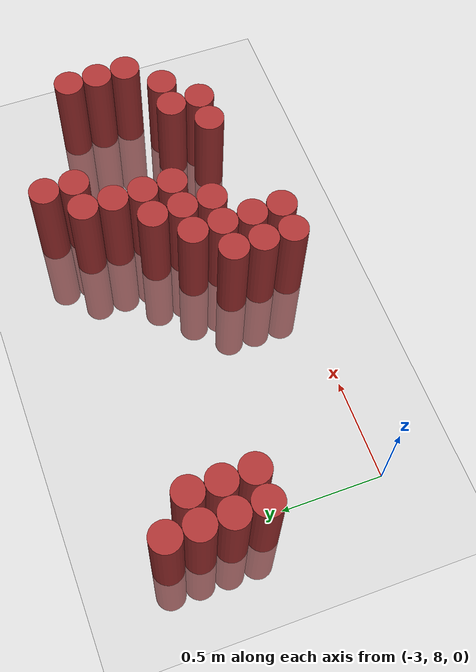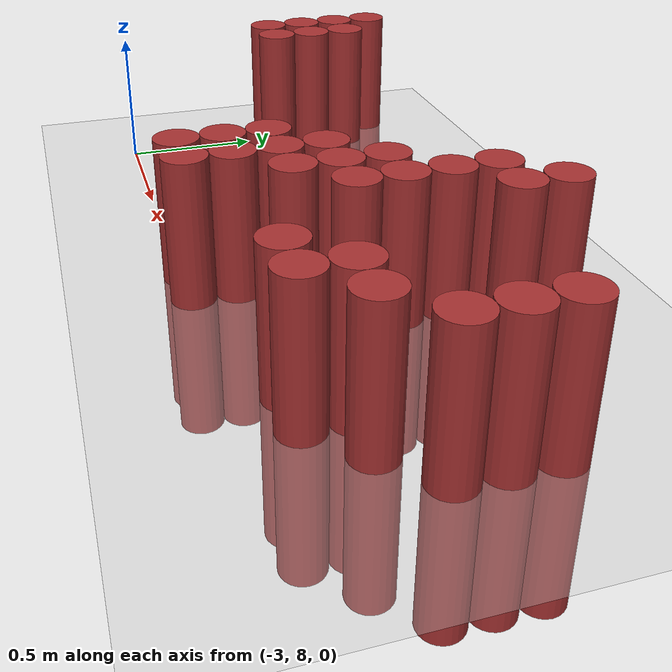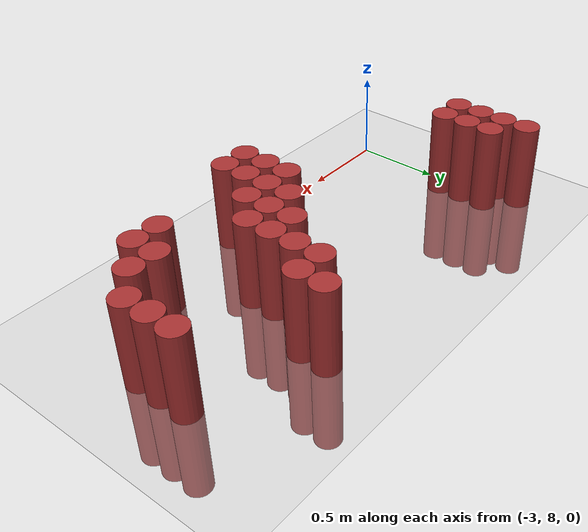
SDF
<sdf version="1.6">
 <world name="default">
  <model name="ground_plane">
   <static>1</static>
   <link name="link">
    <collision name="collision">
     <geometry><plane><normal>0 0 1</normal><size>100 100</size></plane></geometry>
     <surface><friction><ode><mu>100</mu><mu2>50</mu2></ode></friction></surface>
    </collision>
    <visual name="visual">
     <cast_shadows>0</cast_shadows>
     <geometry><plane><normal>0 0 1</normal><size>100 100</size></plane></geometry>
     <material>
      <script><uri>file://media/materials/scripts/gazebo.material</uri><name>Gazebo/Grey</name></script>
     </material>
    </visual>
   </link>
  </model>
  <model name="unit_cylinder_201">
   <static>1</static>
   <pose>-3.075000 8.625000 0.000000 0.000000 0.000000 0.000000</pose>
   <link name="link">
    <inertial>
     <mass>1</mass>
     <inertia><ixx>0.145833</ixx><ixy>0</ixy><ixz>0</ixz><iyy>0.145833</iyy><iyz>0</iyz><izz>0.125</izz></inertia>
    </inertial>
    <collision name="collision">
     <geometry><cylinder><radius>0.075000</radius><length>1</length></cylinder></geometry>
    </collision>
    <visual name="visual">
     <geometry><cylinder><radius>0.075000</radius><length>1</length></cylinder></geometry>
     <material>
      <ambient>0.648000 0.192000 0.192000 1</ambient>
      <diffuse>0.648000 0.192000 0.192000 1</diffuse>
     </material>
     <material>
      <script><name>Gazebo/Grey</name><uri>file://media/materials/scripts/gazebo.material</uri></script>
     </material>
    </visual>
    <sensor name="sensor_contact" type="contact"><contact><collision>collision</collision></contact></sensor>
   </link>
   <plugin filename="gz-sim-touchplugin-system" name="gz::sim::systems::TouchPlugin">
    <target>robot</target>
    <namespace>robot</namespace>
    <time>0.001</time>
    <enabled>true</enabled>
   </plugin>
  </model>
  <model name="unit_cylinder_202">
   <static>1</static>
   <pose>-3.075000 8.775000 0.000000 0.000000 0.000000 0.000000</pose>
   <link name="link">
    <inertial>
     <mass>1</mass>
     <inertia><ixx>0.145833</ixx><ixy>0</ixy><ixz>0</ixz><iyy>0.145833</iyy><iyz>0</iyz><izz>0.125</izz></inertia>
    </inertial>
    <collision name="collision">
     <geometry><cylinder><radius>0.075000</radius><length>1</length></cylinder></geometry>
    </collision>
    <visual name="visual">
     <geometry><cylinder><radius>0.075000</radius><length>1</length></cylinder></geometry>
     <material>
      <ambient>0.648000 0.192000 0.192000 1</ambient>
      <diffuse>0.648000 0.192000 0.192000 1</diffuse>
     </material>
     <material>
      <script><name>Gazebo/Grey</name><uri>file://media/materials/scripts/gazebo.material</uri></script>
     </material>
    </visual>
    <sensor name="sensor_contact" type="contact"><contact><collision>collision</collision></contact></sensor>
   </link>
   <plugin filename="gz-sim-touchplugin-system" name="gz::sim::systems::TouchPlugin">
    <target>robot</target>
    <namespace>robot</namespace>
    <time>0.001</time>
    <enabled>true</enabled>
   </plugin>
  </model>
  <model name="unit_cylinder_203">
   <static>1</static>
   <pose>-3.075000 8.925000 0.000000 0.000000 0.000000 0.000000</pose>
   <link name="link">
    <inertial>
     <mass>1</mass>
     <inertia><ixx>0.145833</ixx><ixy>0</ixy><ixz>0</ixz><iyy>0.145833</iyy><iyz>0</iyz><izz>0.125</izz></inertia>
    </inertial>
    <collision name="collision">
     <geometry><cylinder><radius>0.075000</radius><length>1</length></cylinder></geometry>
    </collision>
    <visual name="visual">
     <geometry><cylinder><radius>0.075000</radius><length>1</length></cylinder></geometry>
     <material>
      <ambient>0.648000 0.192000 0.192000 1</ambient>
      <diffuse>0.648000 0.192000 0.192000 1</diffuse>
     </material>
     <material>
      <script><name>Gazebo/Grey</name><uri>file://media/materials/scripts/gazebo.material</uri></script>
     </material>
    </visual>
    <sensor name="sensor_contact" type="contact"><contact><collision>collision</collision></contact></sensor>
   </link>
   <plugin filename="gz-sim-touchplugin-system" name="gz::sim::systems::TouchPlugin">
    <target>robot</target>
    <namespace>robot</namespace>
    <time>0.001</time>
    <enabled>true</enabled>
   </plugin>
  </model>
  <model name="unit_cylinder_204">
   <static>1</static>
   <pose>-3.075000 9.075000 0.000000 0.000000 0.000000 0.000000</pose>
   <link name="link">
    <inertial>
     <mass>1</mass>
     <inertia><ixx>0.145833</ixx><ixy>0</ixy><ixz>0</ixz><iyy>0.145833</iyy><iyz>0</iyz><izz>0.125</izz></inertia>
    </inertial>
    <collision name="collision">
     <geometry><cylinder><radius>0.075000</radius><length>1</length></cylinder></geometry>
    </collision>
    <visual name="visual">
     <geometry><cylinder><radius>0.075000</radius><length>1</length></cylinder></geometry>
     <material>
      <ambient>0.648000 0.192000 0.192000 1</ambient>
      <diffuse>0.648000 0.192000 0.192000 1</diffuse>
     </material>
     <material>
      <script><name>Gazebo/Grey</name><uri>file://media/materials/scripts/gazebo.material</uri></script>
     </material>
    </visual>
    <sensor name="sensor_contact" type="contact"><contact><collision>collision</collision></contact></sensor>
   </link>
   <plugin filename="gz-sim-touchplugin-system" name="gz::sim::systems::TouchPlugin">
    <target>robot</target>
    <namespace>robot</namespace>
    <time>0.001</time>
    <enabled>true</enabled>
   </plugin>
  </model>
  <model name="unit_cylinder_208">
   <static>1</static>
   <pose>-2.925000 8.625000 0.000000 0.000000 0.000000 0.000000</pose>
   <link name="link">
    <inertial>
     <mass>1</mass>
     <inertia><ixx>0.145833</ixx><ixy>0</ixy><ixz>0</ixz><iyy>0.145833</iyy><iyz>0</iyz><izz>0.125</izz></inertia>
    </inertial>
    <collision name="collision">
     <geometry><cylinder><radius>0.075000</radius><length>1</length></cylinder></geometry>
    </collision>
    <visual name="visual">
     <geometry><cylinder><radius>0.075000</radius><length>1</length></cylinder></geometry>
     <material>
      <ambient>0.648000 0.192000 0.192000 1</ambient>
      <diffuse>0.648000 0.192000 0.192000 1</diffuse>
     </material>
     <material>
      <script><name>Gazebo/Grey</name><uri>file://media/materials/scripts/gazebo.material</uri></script>
     </material>
    </visual>
    <sensor name="sensor_contact" type="contact"><contact><collision>collision</collision></contact></sensor>
   </link>
   <plugin filename="gz-sim-touchplugin-system" name="gz::sim::systems::TouchPlugin">
    <target>robot</target>
    <namespace>robot</namespace>
    <time>0.001</time>
    <enabled>true</enabled>
   </plugin>
  </model>
  <model name="unit_cylinder_209">
   <static>1</static>
   <pose>-2.925000 8.775000 0.000000 0.000000 0.000000 0.000000</pose>
   <link name="link">
    <inertial>
     <mass>1</mass>
     <inertia><ixx>0.145833</ixx><ixy>0</ixy><ixz>0</ixz><iyy>0.145833</iyy><iyz>0</iyz><izz>0.125</izz></inertia>
    </inertial>
    <collision name="collision">
     <geometry><cylinder><radius>0.075000</radius><length>1</length></cylinder></geometry>
    </collision>
    <visual name="visual">
     <geometry><cylinder><radius>0.075000</radius><length>1</length></cylinder></geometry>
     <material>
      <ambient>0.648000 0.192000 0.192000 1</ambient>
      <diffuse>0.648000 0.192000 0.192000 1</diffuse>
     </material>
     <material>
      <script><name>Gazebo/Grey</name><uri>file://media/materials/scripts/gazebo.material</uri></script>
     </material>
    </visual>
    <sensor name="sensor_contact" type="contact"><contact><collision>collision</collision></contact></sensor>
   </link>
   <plugin filename="gz-sim-touchplugin-system" name="gz::sim::systems::TouchPlugin">
    <target>robot</target>
    <namespace>robot</namespace>
    <time>0.001</time>
    <enabled>true</enabled>
   </plugin>
  </model>
  <model name="unit_cylinder_210">
   <static>1</static>
   <pose>-2.925000 8.925000 0.000000 0.000000 0.000000 0.000000</pose>
   <link name="link">
    <inertial>
     <mass>1</mass>
     <inertia><ixx>0.145833</ixx><ixy>0</ixy><ixz>0</ixz><iyy>0.145833</iyy><iyz>0</iyz><izz>0.125</izz></inertia>
    </inertial>
    <collision name="collision">
     <geometry><cylinder><radius>0.075000</radius><length>1</length></cylinder></geometry>
    </collision>
    <visual name="visual">
     <geometry><cylinder><radius>0.075000</radius><length>1</length></cylinder></geometry>
     <material>
      <ambient>0.648000 0.192000 0.192000 1</ambient>
      <diffuse>0.648000 0.192000 0.192000 1</diffuse>
     </material>
     <material>
      <script><name>Gazebo/Grey</name><uri>file://media/materials/scripts/gazebo.material</uri></script>
     </material>
    </visual>
    <sensor name="sensor_contact" type="contact"><contact><collision>collision</collision></contact></sensor>
   </link>
   <plugin filename="gz-sim-touchplugin-system" name="gz::sim::systems::TouchPlugin">
    <target>robot</target>
    <namespace>robot</namespace>
    <time>0.001</time>
    <enabled>true</enabled>
   </plugin>
  </model>
  <model name="unit_cylinder_227">
   <static>1</static>
   <pose>-1.875000 8.025000 0.000000 0.000000 0.000000 0.000000</pose>
   <link name="link">
    <inertial>
     <mass>1</mass>
     <inertia><ixx>0.145833</ixx><ixy>0</ixy><ixz>0</ixz><iyy>0.145833</iyy><iyz>0</iyz><izz>0.125</izz></inertia>
    </inertial>
    <collision name="collision">
     <geometry><cylinder><radius>0.075000</radius><length>1</length></cylinder></geometry>
    </collision>
    <visual name="visual">
     <geometry><cylinder><radius>0.075000</radius><length>1</length></cylinder></geometry>
     <material>
      <ambient>0.648000 0.192000 0.192000 1</ambient>
      <diffuse>0.648000 0.192000 0.192000 1</diffuse>
     </material>
     <material>
      <script><name>Gazebo/Grey</name><uri>file://media/materials/scripts/gazebo.material</uri></script>
     </material>
    </visual>
    <sensor name="sensor_contact" type="contact"><contact><collision>collision</collision></contact></sensor>
   </link>
   <plugin filename="gz-sim-touchplugin-system" name="gz::sim::systems::TouchPlugin">
    <target>robot</target>
    <namespace>robot</namespace>
    <time>0.001</time>
    <enabled>true</enabled>
   </plugin>
  </model>
  <model name="unit_cylinder_228">
   <static>1</static>
   <pose>-1.875000 8.175000 0.000000 0.000000 0.000000 0.000000</pose>
   <link name="link">
    <inertial>
     <mass>1</mass>
     <inertia><ixx>0.145833</ixx><ixy>0</ixy><ixz>0</ixz><iyy>0.145833</iyy><iyz>0</iyz><izz>0.125</izz></inertia>
    </inertial>
    <collision name="collision">
     <geometry><cylinder><radius>0.075000</radius><length>1</length></cylinder></geometry>
    </collision>
    <visual name="visual">
     <geometry><cylinder><radius>0.075000</radius><length>1</length></cylinder></geometry>
     <material>
      <ambient>0.648000 0.192000 0.192000 1</ambient>
      <diffuse>0.648000 0.192000 0.192000 1</diffuse>
     </material>
     <material>
      <script><name>Gazebo/Grey</name><uri>file://media/materials/scripts/gazebo.material</uri></script>
     </material>
    </visual>
    <sensor name="sensor_contact" type="contact"><contact><collision>collision</collision></contact></sensor>
   </link>
   <plugin filename="gz-sim-touchplugin-system" name="gz::sim::systems::TouchPlugin">
    <target>robot</target>
    <namespace>robot</namespace>
    <time>0.001</time>
    <enabled>true</enabled>
   </plugin>
  </model>
  <model name="unit_cylinder_229">
   <static>1</static>
   <pose>-1.875000 8.325000 0.000000 0.000000 0.000000 0.000000</pose>
   <link name="link">
    <inertial>
     <mass>1</mass>
     <inertia><ixx>0.145833</ixx><ixy>0</ixy><ixz>0</ixz><iyy>0.145833</iyy><iyz>0</iyz><izz>0.125</izz></inertia>
    </inertial>
    <collision name="collision">
     <geometry><cylinder><radius>0.075000</radius><length>1</length></cylinder></geometry>
    </collision>
    <visual name="visual">
     <geometry><cylinder><radius>0.075000</radius><length>1</length></cylinder></geometry>
     <material>
      <ambient>0.648000 0.192000 0.192000 1</ambient>
      <diffuse>0.648000 0.192000 0.192000 1</diffuse>
     </material>
     <material>
      <script><name>Gazebo/Grey</name><uri>file://media/materials/scripts/gazebo.material</uri></script>
     </material>
    </visual>
    <sensor name="sensor_contact" type="contact"><contact><collision>collision</collision></contact></sensor>
   </link>
   <plugin filename="gz-sim-touchplugin-system" name="gz::sim::systems::TouchPlugin">
    <target>robot</target>
    <namespace>robot</namespace>
    <time>0.001</time>
    <enabled>true</enabled>
   </plugin>
  </model>
  <model name="unit_cylinder_237">
   <static>1</static>
   <pose>-1.725000 8.025000 0.000000 0.000000 0.000000 0.000000</pose>
   <link name="link">
    <inertial>
     <mass>1</mass>
     <inertia><ixx>0.145833</ixx><ixy>0</ixy><ixz>0</ixz><iyy>0.145833</iyy><iyz>0</iyz><izz>0.125</izz></inertia>
    </inertial>
    <collision name="collision">
     <geometry><cylinder><radius>0.075000</radius><length>1</length></cylinder></geometry>
    </collision>
    <visual name="visual">
     <geometry><cylinder><radius>0.075000</radius><length>1</length></cylinder></geometry>
     <material>
      <ambient>0.648000 0.192000 0.192000 1</ambient>
      <diffuse>0.648000 0.192000 0.192000 1</diffuse>
     </material>
     <material>
      <script><name>Gazebo/Grey</name><uri>file://media/materials/scripts/gazebo.material</uri></script>
     </material>
    </visual>
    <sensor name="sensor_contact" type="contact"><contact><collision>collision</collision></contact></sensor>
   </link>
   <plugin filename="gz-sim-touchplugin-system" name="gz::sim::systems::TouchPlugin">
    <target>robot</target>
    <namespace>robot</namespace>
    <time>0.001</time>
    <enabled>true</enabled>
   </plugin>
  </model>
  <model name="unit_cylinder_238">
   <static>1</static>
   <pose>-1.725000 8.175000 0.000000 0.000000 0.000000 0.000000</pose>
   <link name="link">
    <inertial>
     <mass>1</mass>
     <inertia><ixx>0.145833</ixx><ixy>0</ixy><ixz>0</ixz><iyy>0.145833</iyy><iyz>0</iyz><izz>0.125</izz></inertia>
    </inertial>
    <collision name="collision">
     <geometry><cylinder><radius>0.075000</radius><length>1</length></cylinder></geometry>
    </collision>
    <visual name="visual">
     <geometry><cylinder><radius>0.075000</radius><length>1</length></cylinder></geometry>
     <material>
      <ambient>0.648000 0.192000 0.192000 1</ambient>
      <diffuse>0.648000 0.192000 0.192000 1</diffuse>
     </material>
     <material>
      <script><name>Gazebo/Grey</name><uri>file://media/materials/scripts/gazebo.material</uri></script>
     </material>
    </visual>
    <sensor name="sensor_contact" type="contact"><contact><collision>collision</collision></contact></sensor>
   </link>
   <plugin filename="gz-sim-touchplugin-system" name="gz::sim::systems::TouchPlugin">
    <target>robot</target>
    <namespace>robot</namespace>
    <time>0.001</time>
    <enabled>true</enabled>
   </plugin>
  </model>
  <model name="unit_cylinder_239">
   <static>1</static>
   <pose>-1.725000 8.325000 0.000000 0.000000 0.000000 0.000000</pose>
   <link name="link">
    <inertial>
     <mass>1</mass>
     <inertia><ixx>0.145833</ixx><ixy>0</ixy><ixz>0</ixz><iyy>0.145833</iyy><iyz>0</iyz><izz>0.125</izz></inertia>
    </inertial>
    <collision name="collision">
     <geometry><cylinder><radius>0.075000</radius><length>1</length></cylinder></geometry>
    </collision>
    <visual name="visual">
     <geometry><cylinder><radius>0.075000</radius><length>1</length></cylinder></geometry>
     <material>
      <ambient>0.648000 0.192000 0.192000 1</ambient>
      <diffuse>0.648000 0.192000 0.192000 1</diffuse>
     </material>
     <material>
      <script><name>Gazebo/Grey</name><uri>file://media/materials/scripts/gazebo.material</uri></script>
     </material>
    </visual>
    <sensor name="sensor_contact" type="contact"><contact><collision>collision</collision></contact></sensor>
   </link>
   <plugin filename="gz-sim-touchplugin-system" name="gz::sim::systems::TouchPlugin">
    <target>robot</target>
    <namespace>robot</namespace>
    <time>0.001</time>
    <enabled>true</enabled>
   </plugin>
  </model>
  <model name="unit_cylinder_240">
   <static>1</static>
   <pose>-1.725000 8.475000 0.000000 0.000000 0.000000 0.000000</pose>
   <link name="link">
    <inertial>
     <mass>1</mass>
     <inertia><ixx>0.145833</ixx><ixy>0</ixy><ixz>0</ixz><iyy>0.145833</iyy><iyz>0</iyz><izz>0.125</izz></inertia>
    </inertial>
    <collision name="collision">
     <geometry><cylinder><radius>0.075000</radius><length>1</length></cylinder></geometry>
    </collision>
    <visual name="visual">
     <geometry><cylinder><radius>0.075000</radius><length>1</length></cylinder></geometry>
     <material>
      <ambient>0.648000 0.192000 0.192000 1</ambient>
      <diffuse>0.648000 0.192000 0.192000 1</diffuse>
     </material>
     <material>
      <script><name>Gazebo/Grey</name><uri>file://media/materials/scripts/gazebo.material</uri></script>
     </material>
    </visual>
    <sensor name="sensor_contact" type="contact"><contact><collision>collision</collision></contact></sensor>
   </link>
   <plugin filename="gz-sim-touchplugin-system" name="gz::sim::systems::TouchPlugin">
    <target>robot</target>
    <namespace>robot</namespace>
    <time>0.001</time>
    <enabled>true</enabled>
   </plugin>
  </model>
  <model name="unit_cylinder_249">
   <static>1</static>
   <pose>-1.575000 8.325000 0.000000 0.000000 0.000000 0.000000</pose>
   <link name="link">
    <inertial>
     <mass>1</mass>
     <inertia><ixx>0.145833</ixx><ixy>0</ixy><ixz>0</ixz><iyy>0.145833</iyy><iyz>0</iyz><izz>0.125</izz></inertia>
    </inertial>
    <collision name="collision">
     <geometry><cylinder><radius>0.075000</radius><length>1</length></cylinder></geometry>
    </collision>
    <visual name="visual">
     <geometry><cylinder><radius>0.075000</radius><length>1</length></cylinder></geometry>
     <material>
      <ambient>0.648000 0.192000 0.192000 1</ambient>
      <diffuse>0.648000 0.192000 0.192000 1</diffuse>
     </material>
     <material>
      <script><name>Gazebo/Grey</name><uri>file://media/materials/scripts/gazebo.material</uri></script>
     </material>
    </visual>
    <sensor name="sensor_contact" type="contact"><contact><collision>collision</collision></contact></sensor>
   </link>
   <plugin filename="gz-sim-touchplugin-system" name="gz::sim::systems::TouchPlugin">
    <target>robot</target>
    <namespace>robot</namespace>
    <time>0.001</time>
    <enabled>true</enabled>
   </plugin>
  </model>
  <model name="unit_cylinder_250">
   <static>1</static>
   <pose>-1.575000 8.475000 0.000000 0.000000 0.000000 0.000000</pose>
   <link name="link">
    <inertial>
     <mass>1</mass>
     <inertia><ixx>0.145833</ixx><ixy>0</ixy><ixz>0</ixz><iyy>0.145833</iyy><iyz>0</iyz><izz>0.125</izz></inertia>
    </inertial>
    <collision name="collision">
     <geometry><cylinder><radius>0.075000</radius><length>1</length></cylinder></geometry>
    </collision>
    <visual name="visual">
     <geometry><cylinder><radius>0.075000</radius><length>1</length></cylinder></geometry>
     <material>
      <ambient>0.648000 0.192000 0.192000 1</ambient>
      <diffuse>0.648000 0.192000 0.192000 1</diffuse>
     </material>
     <material>
      <script><name>Gazebo/Grey</name><uri>file://media/materials/scripts/gazebo.material</uri></script>
     </material>
    </visual>
    <sensor name="sensor_contact" type="contact"><contact><collision>collision</collision></contact></sensor>
   </link>
   <plugin filename="gz-sim-touchplugin-system" name="gz::sim::systems::TouchPlugin">
    <target>robot</target>
    <namespace>robot</namespace>
    <time>0.001</time>
    <enabled>true</enabled>
   </plugin>
  </model>
  <model name="unit_cylinder_251">
   <static>1</static>
   <pose>-1.575000 8.625000 0.000000 0.000000 0.000000 0.000000</pose>
   <link name="link">
    <inertial>
     <mass>1</mass>
     <inertia><ixx>0.145833</ixx><ixy>0</ixy><ixz>0</ixz><iyy>0.145833</iyy><iyz>0</iyz><izz>0.125</izz></inertia>
    </inertial>
    <collision name="collision">
     <geometry><cylinder><radius>0.075000</radius><length>1</length></cylinder></geometry>
    </collision>
    <visual name="visual">
     <geometry><cylinder><radius>0.075000</radius><length>1</length></cylinder></geometry>
     <material>
      <ambient>0.648000 0.192000 0.192000 1</ambient>
      <diffuse>0.648000 0.192000 0.192000 1</diffuse>
     </material>
     <material>
      <script><name>Gazebo/Grey</name><uri>file://media/materials/scripts/gazebo.material</uri></script>
     </material>
    </visual>
    <sensor name="sensor_contact" type="contact"><contact><collision>collision</collision></contact></sensor>
   </link>
   <plugin filename="gz-sim-touchplugin-system" name="gz::sim::systems::TouchPlugin">
    <target>robot</target>
    <namespace>robot</namespace>
    <time>0.001</time>
    <enabled>true</enabled>
   </plugin>
  </model>
  <model name="unit_cylinder_261">
   <static>1</static>
   <pose>-1.425000 8.475000 0.000000 0.000000 0.000000 0.000000</pose>
   <link name="link">
    <inertial>
     <mass>1</mass>
     <inertia><ixx>0.145833</ixx><ixy>0</ixy><ixz>0</ixz><iyy>0.145833</iyy><iyz>0</iyz><izz>0.125</izz></inertia>
    </inertial>
    <collision name="collision">
     <geometry><cylinder><radius>0.075000</radius><length>1</length></cylinder></geometry>
    </collision>
    <visual name="visual">
     <geometry><cylinder><radius>0.075000</radius><length>1</length></cylinder></geometry>
     <material>
      <ambient>0.648000 0.192000 0.192000 1</ambient>
      <diffuse>0.648000 0.192000 0.192000 1</diffuse>
     </material>
     <material>
      <script><name>Gazebo/Grey</name><uri>file://media/materials/scripts/gazebo.material</uri></script>
     </material>
    </visual>
    <sensor name="sensor_contact" type="contact"><contact><collision>collision</collision></contact></sensor>
   </link>
   <plugin filename="gz-sim-touchplugin-system" name="gz::sim::systems::TouchPlugin">
    <target>robot</target>
    <namespace>robot</namespace>
    <time>0.001</time>
    <enabled>true</enabled>
   </plugin>
  </model>
  <model name="unit_cylinder_262">
   <static>1</static>
   <pose>-1.425000 8.625000 0.000000 0.000000 0.000000 0.000000</pose>
   <link name="link">
    <inertial>
     <mass>1</mass>
     <inertia><ixx>0.145833</ixx><ixy>0</ixy><ixz>0</ixz><iyy>0.145833</iyy><iyz>0</iyz><izz>0.125</izz></inertia>
    </inertial>
    <collision name="collision">
     <geometry><cylinder><radius>0.075000</radius><length>1</length></cylinder></geometry>
    </collision>
    <visual name="visual">
     <geometry><cylinder><radius>0.075000</radius><length>1</length></cylinder></geometry>
     <material>
      <ambient>0.648000 0.192000 0.192000 1</ambient>
      <diffuse>0.648000 0.192000 0.192000 1</diffuse>
     </material>
     <material>
      <script><name>Gazebo/Grey</name><uri>file://media/materials/scripts/gazebo.material</uri></script>
     </material>
    </visual>
    <sensor name="sensor_contact" type="contact"><contact><collision>collision</collision></contact></sensor>
   </link>
   <plugin filename="gz-sim-touchplugin-system" name="gz::sim::systems::TouchPlugin">
    <target>robot</target>
    <namespace>robot</namespace>
    <time>0.001</time>
    <enabled>true</enabled>
   </plugin>
  </model>
  <model name="unit_cylinder_263">
   <static>1</static>
   <pose>-1.425000 8.775000 0.000000 0.000000 0.000000 0.000000</pose>
   <link name="link">
    <inertial>
     <mass>1</mass>
     <inertia><ixx>0.145833</ixx><ixy>0</ixy><ixz>0</ixz><iyy>0.145833</iyy><iyz>0</iyz><izz>0.125</izz></inertia>
    </inertial>
    <collision name="collision">
     <geometry><cylinder><radius>0.075000</radius><length>1</length></cylinder></geometry>
    </collision>
    <visual name="visual">
     <geometry><cylinder><radius>0.075000</radius><length>1</length></cylinder></geometry>
     <material>
      <ambient>0.648000 0.192000 0.192000 1</ambient>
      <diffuse>0.648000 0.192000 0.192000 1</diffuse>
     </material>
     <material>
      <script><name>Gazebo/Grey</name><uri>file://media/materials/scripts/gazebo.material</uri></script>
     </material>
    </visual>
    <sensor name="sensor_contact" type="contact"><contact><collision>collision</collision></contact></sensor>
   </link>
   <plugin filename="gz-sim-touchplugin-system" name="gz::sim::systems::TouchPlugin">
    <target>robot</target>
    <namespace>robot</namespace>
    <time>0.001</time>
    <enabled>true</enabled>
   </plugin>
  </model>
  <model name="unit_cylinder_264">
   <static>1</static>
   <pose>-1.425000 8.925000 0.000000 0.000000 0.000000 0.000000</pose>
   <link name="link">
    <inertial>
     <mass>1</mass>
     <inertia><ixx>0.145833</ixx><ixy>0</ixy><ixz>0</ixz><iyy>0.145833</iyy><iyz>0</iyz><izz>0.125</izz></inertia>
    </inertial>
    <collision name="collision">
     <geometry><cylinder><radius>0.075000</radius><length>1</length></cylinder></geometry>
    </collision>
    <visual name="visual">
     <geometry><cylinder><radius>0.075000</radius><length>1</length></cylinder></geometry>
     <material>
      <ambient>0.648000 0.192000 0.192000 1</ambient>
      <diffuse>0.648000 0.192000 0.192000 1</diffuse>
     </material>
     <material>
      <script><name>Gazebo/Grey</name><uri>file://media/materials/scripts/gazebo.material</uri></script>
     </material>
    </visual>
    <sensor name="sensor_contact" type="contact"><contact><collision>collision</collision></contact></sensor>
   </link>
   <plugin filename="gz-sim-touchplugin-system" name="gz::sim::systems::TouchPlugin">
    <target>robot</target>
    <namespace>robot</namespace>
    <time>0.001</time>
    <enabled>true</enabled>
   </plugin>
  </model>
  <model name="unit_cylinder_267">
   <static>1</static>
   <pose>-1.275000 8.925000 0.000000 0.000000 0.000000 0.000000</pose>
   <link name="link">
    <inertial>
     <mass>1</mass>
     <inertia><ixx>0.145833</ixx><ixy>0</ixy><ixz>0</ixz><iyy>0.145833</iyy><iyz>0</iyz><izz>0.125</izz></inertia>
    </inertial>
    <collision name="collision">
     <geometry><cylinder><radius>0.075000</radius><length>1</length></cylinder></geometry>
    </collision>
    <visual name="visual">
     <geometry><cylinder><radius>0.075000</radius><length>1</length></cylinder></geometry>
     <material>
      <ambient>0.648000 0.192000 0.192000 1</ambient>
      <diffuse>0.648000 0.192000 0.192000 1</diffuse>
     </material>
     <material>
      <script><name>Gazebo/Grey</name><uri>file://media/materials/scripts/gazebo.material</uri></script>
     </material>
    </visual>
    <sensor name="sensor_contact" type="contact"><contact><collision>collision</collision></contact></sensor>
   </link>
   <plugin filename="gz-sim-touchplugin-system" name="gz::sim::systems::TouchPlugin">
    <target>robot</target>
    <namespace>robot</namespace>
    <time>0.001</time>
    <enabled>true</enabled>
   </plugin>
  </model>
  <model name="unit_cylinder_268">
   <static>1</static>
   <pose>-1.275000 9.075000 0.000000 0.000000 0.000000 0.000000</pose>
   <link name="link">
    <inertial>
     <mass>1</mass>
     <inertia><ixx>0.145833</ixx><ixy>0</ixy><ixz>0</ixz><iyy>0.145833</iyy><iyz>0</iyz><izz>0.125</izz></inertia>
    </inertial>
    <collision name="collision">
     <geometry><cylinder><radius>0.075000</radius><length>1</length></cylinder></geometry>
    </collision>
    <visual name="visual">
     <geometry><cylinder><radius>0.075000</radius><length>1</length></cylinder></geometry>
     <material>
      <ambient>0.648000 0.192000 0.192000 1</ambient>
      <diffuse>0.648000 0.192000 0.192000 1</diffuse>
     </material>
     <material>
      <script><name>Gazebo/Grey</name><uri>file://media/materials/scripts/gazebo.material</uri></script>
     </material>
    </visual>
    <sensor name="sensor_contact" type="contact"><contact><collision>collision</collision></contact></sensor>
   </link>
   <plugin filename="gz-sim-touchplugin-system" name="gz::sim::systems::TouchPlugin">
    <target>robot</target>
    <namespace>robot</namespace>
    <time>0.001</time>
    <enabled>true</enabled>
   </plugin>
  </model>
  <model name="unit_cylinder_272">
   <static>1</static>
   <pose>-1.125000 8.175000 0.000000 0.000000 0.000000 0.000000</pose>
   <link name="link">
    <inertial>
     <mass>1</mass>
     <inertia><ixx>0.145833</ixx><ixy>0</ixy><ixz>0</ixz><iyy>0.145833</iyy><iyz>0</iyz><izz>0.125</izz></inertia>
    </inertial>
    <collision name="collision">
     <geometry><cylinder><radius>0.075000</radius><length>1</length></cylinder></geometry>
    </collision>
    <visual name="visual">
     <geometry><cylinder><radius>0.075000</radius><length>1</length></cylinder></geometry>
     <material>
      <ambient>0.648000 0.192000 0.192000 1</ambient>
      <diffuse>0.648000 0.192000 0.192000 1</diffuse>
     </material>
     <material>
      <script><name>Gazebo/Grey</name><uri>file://media/materials/scripts/gazebo.material</uri></script>
     </material>
    </visual>
    <sensor name="sensor_contact" type="contact"><contact><collision>collision</collision></contact></sensor>
   </link>
   <plugin filename="gz-sim-touchplugin-system" name="gz::sim::systems::TouchPlugin">
    <target>robot</target>
    <namespace>robot</namespace>
    <time>0.001</time>
    <enabled>true</enabled>
   </plugin>
  </model>
  <model name="unit_cylinder_276">
   <static>1</static>
   <pose>-0.975000 8.175000 0.000000 0.000000 0.000000 0.000000</pose>
   <link name="link">
    <inertial>
     <mass>1</mass>
     <inertia><ixx>0.145833</ixx><ixy>0</ixy><ixz>0</ixz><iyy>0.145833</iyy><iyz>0</iyz><izz>0.125</izz></inertia>
    </inertial>
    <collision name="collision">
     <geometry><cylinder><radius>0.075000</radius><length>1</length></cylinder></geometry>
    </collision>
    <visual name="visual">
     <geometry><cylinder><radius>0.075000</radius><length>1</length></cylinder></geometry>
     <material>
      <ambient>0.648000 0.192000 0.192000 1</ambient>
      <diffuse>0.648000 0.192000 0.192000 1</diffuse>
     </material>
     <material>
      <script><name>Gazebo/Grey</name><uri>file://media/materials/scripts/gazebo.material</uri></script>
     </material>
    </visual>
    <sensor name="sensor_contact" type="contact"><contact><collision>collision</collision></contact></sensor>
   </link>
   <plugin filename="gz-sim-touchplugin-system" name="gz::sim::systems::TouchPlugin">
    <target>robot</target>
    <namespace>robot</namespace>
    <time>0.001</time>
    <enabled>true</enabled>
   </plugin>
  </model>
  <model name="unit_cylinder_277">
   <static>1</static>
   <pose>-0.975000 8.325000 0.000000 0.000000 0.000000 0.000000</pose>
   <link name="link">
    <inertial>
     <mass>1</mass>
     <inertia><ixx>0.145833</ixx><ixy>0</ixy><ixz>0</ixz><iyy>0.145833</iyy><iyz>0</iyz><izz>0.125</izz></inertia>
    </inertial>
    <collision name="collision">
     <geometry><cylinder><radius>0.075000</radius><length>1</length></cylinder></geometry>
    </collision>
    <visual name="visual">
     <geometry><cylinder><radius>0.075000</radius><length>1</length></cylinder></geometry>
     <material>
      <ambient>0.648000 0.192000 0.192000 1</ambient>
      <diffuse>0.648000 0.192000 0.192000 1</diffuse>
     </material>
     <material>
      <script><name>Gazebo/Grey</name><uri>file://media/materials/scripts/gazebo.material</uri></script>
     </material>
    </visual>
    <sensor name="sensor_contact" type="contact"><contact><collision>collision</collision></contact></sensor>
   </link>
   <plugin filename="gz-sim-touchplugin-system" name="gz::sim::systems::TouchPlugin">
    <target>robot</target>
    <namespace>robot</namespace>
    <time>0.001</time>
    <enabled>true</enabled>
   </plugin>
  </model>
  <model name="unit_cylinder_281">
   <static>1</static>
   <pose>-0.825000 8.325000 0.000000 0.000000 0.000000 0.000000</pose>
   <link name="link">
    <inertial>
     <mass>1</mass>
     <inertia><ixx>0.145833</ixx><ixy>0</ixy><ixz>0</ixz><iyy>0.145833</iyy><iyz>0</iyz><izz>0.125</izz></inertia>
    </inertial>
    <collision name="collision">
     <geometry><cylinder><radius>0.075000</radius><length>1</length></cylinder></geometry>
    </collision>
    <visual name="visual">
     <geometry><cylinder><radius>0.075000</radius><length>1</length></cylinder></geometry>
     <material>
      <ambient>0.648000 0.192000 0.192000 1</ambient>
      <diffuse>0.648000 0.192000 0.192000 1</diffuse>
     </material>
     <material>
      <script><name>Gazebo/Grey</name><uri>file://media/materials/scripts/gazebo.material</uri></script>
     </material>
    </visual>
    <sensor name="sensor_contact" type="contact"><contact><collision>collision</collision></contact></sensor>
   </link>
   <plugin filename="gz-sim-touchplugin-system" name="gz::sim::systems::TouchPlugin">
    <target>robot</target>
    <namespace>robot</namespace>
    <time>0.001</time>
    <enabled>true</enabled>
   </plugin>
  </model>
  <model name="unit_cylinder_289">
   <static>1</static>
   <pose>-0.675000 8.475000 0.000000 0.000000 0.000000 0.000000</pose>
   <link name="link">
    <inertial>
     <mass>1</mass>
     <inertia><ixx>0.145833</ixx><ixy>0</ixy><ixz>0</ixz><iyy>0.145833</iyy><iyz>0</iyz><izz>0.125</izz></inertia>
    </inertial>
    <collision name="collision">
     <geometry><cylinder><radius>0.075000</radius><length>1</length></cylinder></geometry>
    </collision>
    <visual name="visual">
     <geometry><cylinder><radius>0.075000</radius><length>1</length></cylinder></geometry>
     <material>
      <ambient>0.648000 0.192000 0.192000 1</ambient>
      <diffuse>0.648000 0.192000 0.192000 1</diffuse>
     </material>
     <material>
      <script><name>Gazebo/Grey</name><uri>file://media/materials/scripts/gazebo.material</uri></script>
     </material>
    </visual>
    <sensor name="sensor_contact" type="contact"><contact><collision>collision</collision></contact></sensor>
   </link>
   <plugin filename="gz-sim-touchplugin-system" name="gz::sim::systems::TouchPlugin">
    <target>robot</target>
    <namespace>robot</namespace>
    <time>0.001</time>
    <enabled>true</enabled>
   </plugin>
  </model>
  <model name="unit_cylinder_290">
   <static>1</static>
   <pose>-0.675000 8.625000 0.000000 0.000000 0.000000 0.000000</pose>
   <link name="link">
    <inertial>
     <mass>1</mass>
     <inertia><ixx>0.145833</ixx><ixy>0</ixy><ixz>0</ixz><iyy>0.145833</iyy><iyz>0</iyz><izz>0.125</izz></inertia>
    </inertial>
    <collision name="collision">
     <geometry><cylinder><radius>0.075000</radius><length>1</length></cylinder></geometry>
    </collision>
    <visual name="visual">
     <geometry><cylinder><radius>0.075000</radius><length>1</length></cylinder></geometry>
     <material>
      <ambient>0.648000 0.192000 0.192000 1</ambient>
      <diffuse>0.648000 0.192000 0.192000 1</diffuse>
     </material>
     <material>
      <script><name>Gazebo/Grey</name><uri>file://media/materials/scripts/gazebo.material</uri></script>
     </material>
    </visual>
    <sensor name="sensor_contact" type="contact"><contact><collision>collision</collision></contact></sensor>
   </link>
   <plugin filename="gz-sim-touchplugin-system" name="gz::sim::systems::TouchPlugin">
    <target>robot</target>
    <namespace>robot</namespace>
    <time>0.001</time>
    <enabled>true</enabled>
   </plugin>
  </model>
  <model name="unit_cylinder_291">
   <static>1</static>
   <pose>-0.675000 8.775000 0.000000 0.000000 0.000000 0.000000</pose>
   <link name="link">
    <inertial>
     <mass>1</mass>
     <inertia><ixx>0.145833</ixx><ixy>0</ixy><ixz>0</ixz><iyy>0.145833</iyy><iyz>0</iyz><izz>0.125</izz></inertia>
    </inertial>
    <collision name="collision">
     <geometry><cylinder><radius>0.075000</radius><length>1</length></cylinder></geometry>
    </collision>
    <visual name="visual">
     <geometry><cylinder><radius>0.075000</radius><length>1</length></cylinder></geometry>
     <material>
      <ambient>0.648000 0.192000 0.192000 1</ambient>
      <diffuse>0.648000 0.192000 0.192000 1</diffuse>
     </material>
     <material>
      <script><name>Gazebo/Grey</name><uri>file://media/materials/scripts/gazebo.material</uri></script>
     </material>
    </visual>
    <sensor name="sensor_contact" type="contact"><contact><collision>collision</collision></contact></sensor>
   </link>
   <plugin filename="gz-sim-touchplugin-system" name="gz::sim::systems::TouchPlugin">
    <target>robot</target>
    <namespace>robot</namespace>
    <time>0.001</time>
    <enabled>true</enabled>
   </plugin>
  </model>
 </world>
</sdf>
